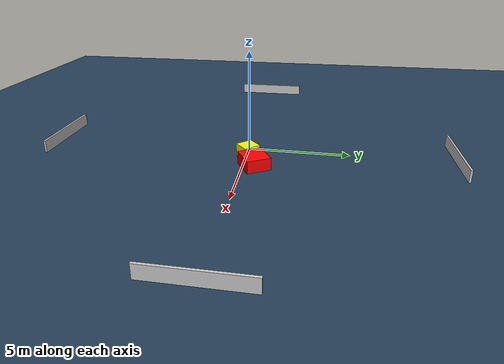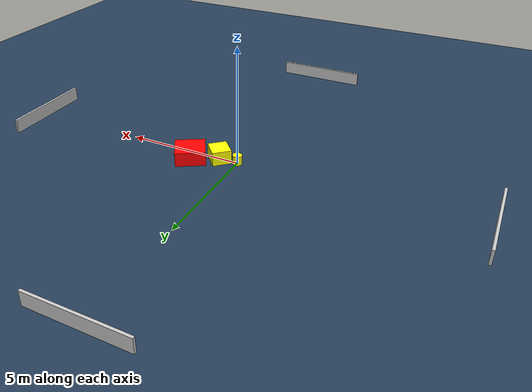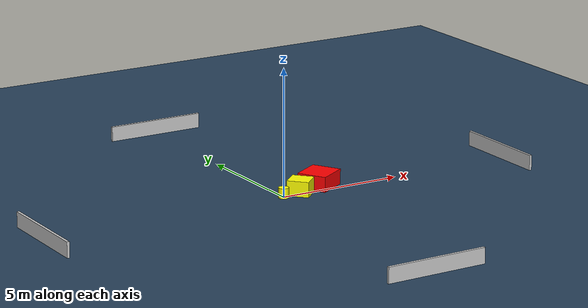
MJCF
<?xml version="1.0" ?>
<mujoco model="generated_environment">
  <option timestep="0.01" integrator="RK4" cone="elliptic"/>
  <default>
    <geom density="1"/>
  </default>
  <asset>
    <texture builtin="gradient" height="3072" name="skybox" rgb1="0.3 0.5 0.7" rgb2="0 0 0" type="skybox" width="512"/>
    <texture builtin="checker" height="300" name="groundplane" rgb1="0.2 0.3 0.4" rgb2="0.1 0.2 0.3" type="2d" width="300"/>
    <material name="groundplane" reflectance="0.2" texrepeat="5 5" texture="groundplane"/>
  </asset>
  <worldbody>
    <light dir="0 0 -1" directional="true" pos="0 0 1.5"/>
    <geom condim="3" friction="0.5 0.005 0.001" material="groundplane" name="floor" pos="0 0 0" size="0 0 0.05" type="plane"/>
    <body name="walls">
      <geom name="wall_1" condim="4" pos="-10.0 0.0 0.3" rgba="0.800000011920929 0.800000011920929 0.800000011920929 1.0" size="0.05 2.0 0.3" type="box"/>
      <geom name="wall_2" condim="4" pos="10.0 0.0 0.3" rgba="0.800000011920929 0.800000011920929 0.800000011920929 1.0" size="0.05 2.0 0.3" type="box"/>
      <geom name="wall_3" condim="4" pos="0.0 -10.0 0.3" rgba="0.800000011920929 0.800000011920929 0.800000011920929 1.0" size="2.0 0.05 0.3" type="box"/>
      <geom name="wall_4" condim="4" pos="0.0 10.0 0.3" rgba="0.800000011920929 0.800000011920929 0.800000011920929 1.0" size="2.0 0.05 0.3" type="box"/>
    </body>
    <body name="robot">
      <joint name="joint_x" type="slide" pos="0 0 0" axis="1 0 0"/>
      <joint name="joint_y" type="slide" pos="0 0 0" axis="0 1 0"/>
      <geom name="robot" type="cylinder" pos="0.0 0.0 0.2" size="0.2 0.2 0.0" mass="5.0" friction="1.0 0.005 0.0001" condim="4" rgba="1.0 1.0 0.0 1.0"/>
    </body>
    <body name="obstacle_1_movable">
      <geom name="obstacle_1_movable" condim="4" pos="0.7854170321678936 0.06534559080869923 0.3" euler="0 0 132.56203072601357" friction="0.0 0.005 0.001" rgba="1.0 1.0 0.0 1.0" size="0.42591733846051283 0.3980722336628997 0.3" type="box" mass="0.1"/>
      <joint type="free"/>
    </body>
    <body name="obstacle_2_static">
      <geom name="obstacle_2_static" condim="4" pos="1.9010385255544024 0.5305937828787248 0.3" euler="0 0 30.59978111714015" friction="0.0 0.005 0.001" rgba="1.0 0.0 0.0 1.0" size="0.6298628720347601 0.5882806665327734 0.3" type="box"/>
    </body>
  </worldbody>
  <actuator>
    <motor name="actuator_x" joint="joint_x" gear="1" ctrlrange="-1 1"/>
    <motor name="actuator_y" joint="joint_y" gear="1" ctrlrange="-1 1"/>
  </actuator>
</mujoco>
